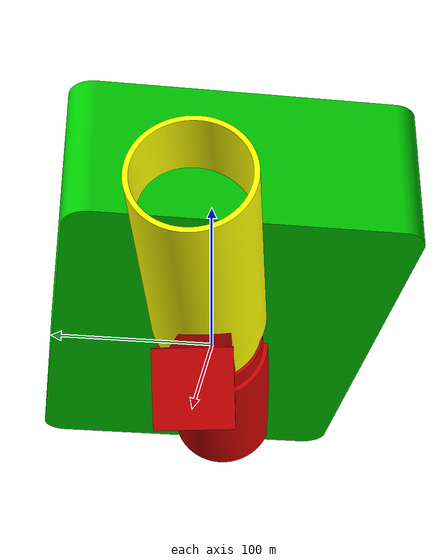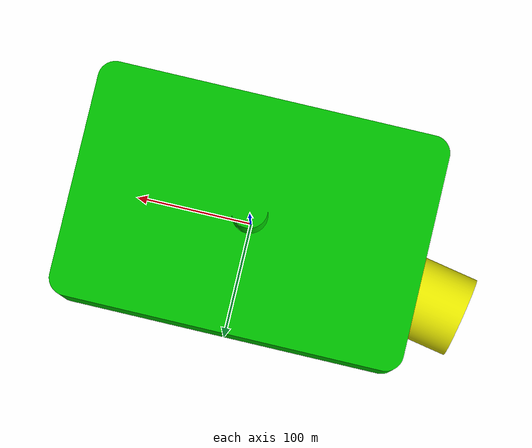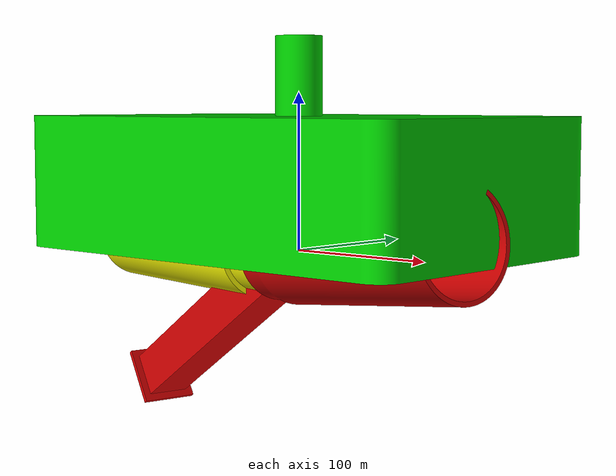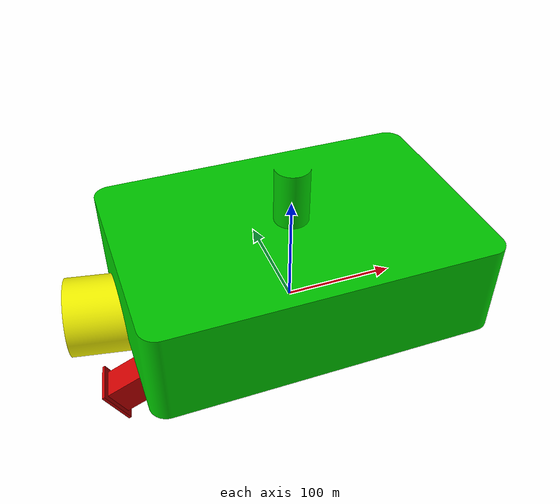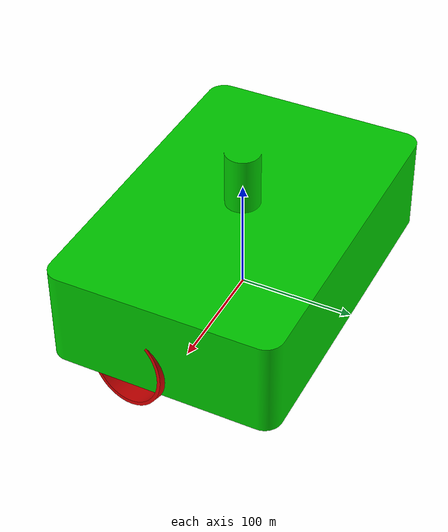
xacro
<?xml version="1.0"?>
<!-- https://wiki.ros.org/urdf/XML/link -->

<robot name="puma560">
    <!-- Links e juntas aqui -->

    <material name="red">
    <color rgba="0.8 0 0 1"/>
</material>

<material name="green">
    <color rgba="0 0.8 0 1"/>
</material>

<material name="blue">
    <color rgba="0 0 0.8 1"/>
</material>

<material name="yellow">
    <color rgba="1 1 0 1"/>
</material>

<material name="cyan">
    <color rgba="0 1 1 1"/>
</material>

    <link name="world">
    <visual>
        <geometry>
            <box size="0.0 0.0 0.0"/>
        </geometry>
        <origin rpy="0 0 0" xyz="0 0 0"/>
        <material name="green"/>
    </visual>
</link>

<joint name="joint_0" type="fixed">
    <parent link="world"/>
    <child link="base_link"/>
    <origin xyz="0 0 0.23" rpy="0 0 0"/>
</joint>

<link name="base_link">
    <visual>
        <geometry>
            <mesh filename="package://robot_description/meshes/base_link.STL"/>
        </geometry>
        <origin xyz="0 0 0" rpy="0 0 0"/>
        <material name="green"/>
    </visual>
</link>

<joint name="joint_1" type="revolute">
    <parent link="base_link"/>
    <child link="link_1"/>
    <origin xyz="-0.12618 0 0.31169" rpy="-1.5708 0 1.3815"/>
    <axis xyz="0 1 0"/>
    <limit effort="1000" velocity="0.5" lower="-3.141593" upper="3.141593"/>
</joint>

<link name="link_1">
    <visual>
        <geometry>
            <mesh filename="package://robot_description/meshes/link_1.STL"/>
        </geometry>
        <origin xyz="0 0 0" rpy="0 0 0"/>
        <material name="yellow"/>
    </visual>
</link>

<joint name="joint_2" type="revolute">
    <parent link="link_1"/>
    <child link="link_2"/>
    <origin xyz="-0.14641 -0.08128 0" rpy="3.0346 0 0"/>
    <axis xyz="1 0 0"/>
    <limit effort="1000" velocity="0.5" lower="-1.5707" upper="1.5707"/>
</joint>

<link name="link_2">
    <visual>
        <geometry>
            <mesh filename="package://robot_description/meshes/link_2.STL"/>
        </geometry>
        <origin xyz="0 0 0" rpy="0 0 0"/>
        <material name="red"/>
    </visual>
</link>

<joint name="joint_3" type="revolute">
    <parent link="link_2"/>
    <child link="link_3"/>
    <origin xyz="0 0 0.4318" rpy="-2.6879 0 -3.1416"/>
    <axis xyz="1 0 0"/>
    <limit effort="1000" velocity="0.5" lower="-1.5707" upper="1.5707"/>
</joint>

<link name="link_3">
    <visual>
        <geometry>
            <mesh filename="package://robot_description/meshes/link_3.STL"/>
        </geometry>
        <origin xyz="0 0 0" rpy="0 0 0"/>
        <material name="red"/>
    </visual>
</link>

<joint name="joint_4" type="revolute">
    <parent link="link_3"/>
    <child link="link_4"/>
    <origin xyz="-0.016872 -0.39296 0" rpy="3.1416 -1.2686 3.1416"/>
    <axis xyz="0 1 0"/>
    <limit effort="1000" velocity="0.5" lower="-1.5707" upper="1.5707"/>
</joint>

<link name="link_4">
    <visual>
        <geometry>
            <mesh filename="package://robot_description/meshes/link_4.STL"/>
        </geometry>
        <origin rpy="0 0 0" xyz="0 0 0"/>
        <material name="yellow"/>
    </visual>
</link>

<joint name="joint_5" type="revolute">
    <parent link="link_4"/>
    <child link="link_5"/>
    <origin xyz="0 -0.039129 0" rpy="1.4855 1.5708 0"/>
    <axis xyz="1 0 0"/>
    <limit effort="1000" velocity="0.5" lower="-1.5707" upper="1.5707"/>
</joint>

<link name="link_5">
    <visual>
        <geometry>
            <mesh filename="package://robot_description/meshes/link_5.STL"/>
        </geometry>
        <origin xyz="0 0 0" rpy="0 0 0"/>
        <material name="yellow"/>
    </visual>
</link>

</robot>
